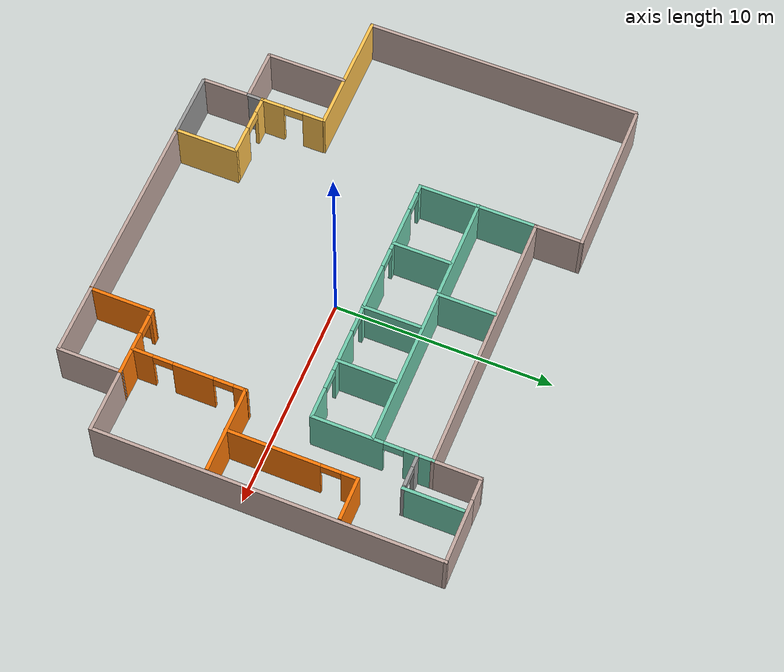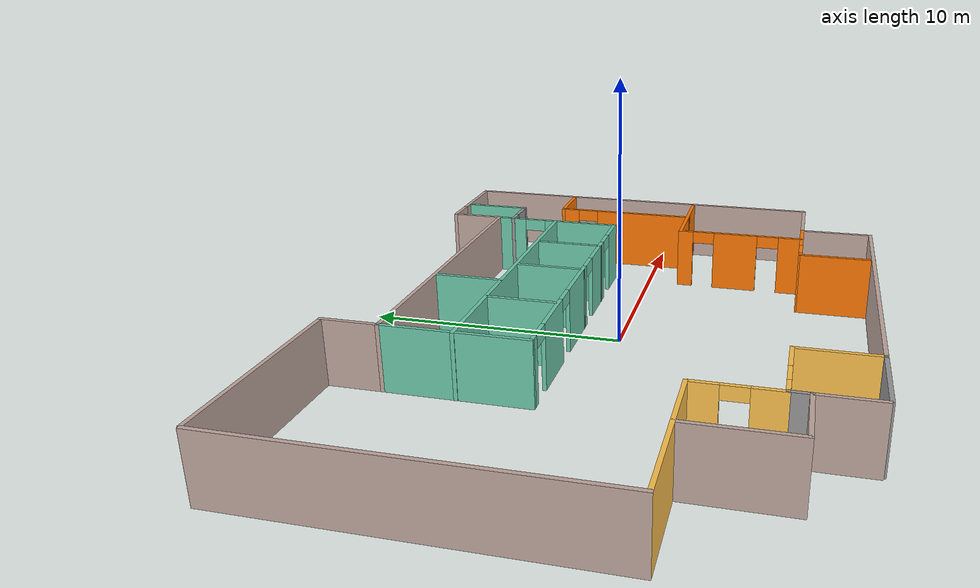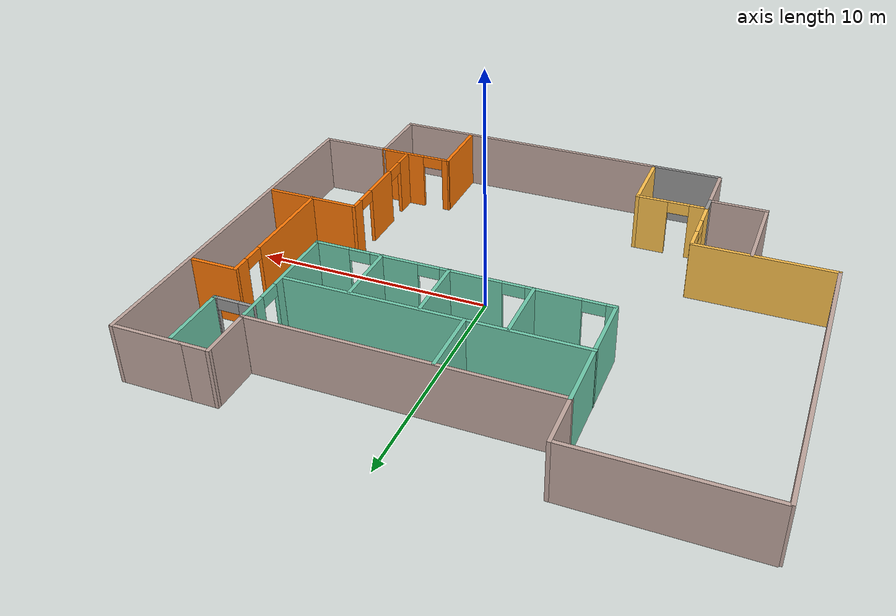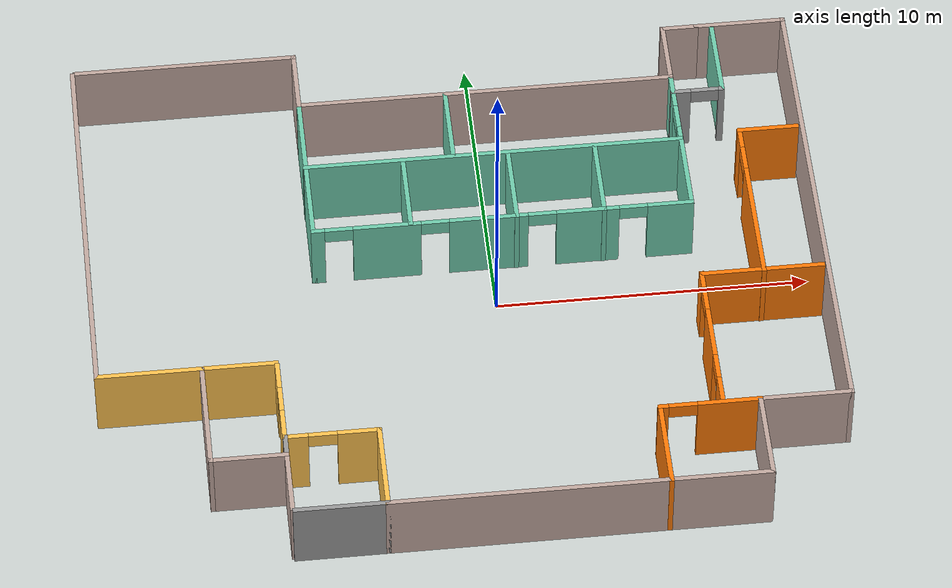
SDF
<?xml version='1.0'?>
<sdf version='1.6'>
  <model name='BuildingModel'>
    <pose frame=''>-1.26019 -0.137703 0 0 -0 0</pose>
    <link name='Wall_100'>
      <collision name='Wall_100_Collision'>
        <geometry>
          <box>
            <size>2.75 0.15 2.5</size>
          </box>
        </geometry>
        <pose frame=''>0 0 1.25 0 -0 0</pose>
      </collision>
      <visual name='Wall_100_Visual'>
        <pose frame=''>0 0 1.25 0 -0 0</pose>
        <geometry>
          <box>
            <size>2.75 0.15 2.5</size>
          </box>
        </geometry>
        <material>
          <script>
            <uri>file://media/materials/scripts/gazebo.material</uri>
            <name>Gazebo/Grey</name>
          </script>
          <ambient>0.435294 0.796078 0.67451 1</ambient>
        </material>
        <meta>
          <layer>0</layer>
        </meta>
      </visual>
      <pose frame=''>0.320563 5.77326 0 0 0 -1.5708</pose>
    </link>
    <link name='Wall_102'>
      <collision name='Wall_102_Collision'>
        <geometry>
          <box>
            <size>2.75 0.15 2.5</size>
          </box>
        </geometry>
        <pose frame=''>0 0 1.25 0 -0 0</pose>
      </collision>
      <visual name='Wall_102_Visual'>
        <pose frame=''>0 0 1.25 0 -0 0</pose>
        <geometry>
          <box>
            <size>2.75 0.15 2.5</size>
          </box>
        </geometry>
        <material>
          <script>
            <uri>file://media/materials/scripts/gazebo.material</uri>
            <name>Gazebo/Grey</name>
          </script>
          <ambient>0.435294 0.796078 0.67451 1</ambient>
        </material>
        <meta>
          <layer>0</layer>
        </meta>
      </visual>
      <pose frame=''>-1.30993 3.0968 0 0 0 -1.5708</pose>
    </link>
    <link name='Wall_104'>
      <collision name='Wall_104_Collision'>
        <geometry>
          <box>
            <size>2.75 0.15 2.5</size>
          </box>
        </geometry>
        <pose frame=''>0 0 1.25 0 -0 0</pose>
      </collision>
      <visual name='Wall_104_Visual'>
        <pose frame=''>0 0 1.25 0 -0 0</pose>
        <geometry>
          <box>
            <size>2.75 0.15 2.5</size>
          </box>
        </geometry>
        <material>
          <script>
            <uri>file://media/materials/scripts/gazebo.material</uri>
            <name>Gazebo/Grey</name>
          </script>
          <ambient>0.435294 0.796078 0.67451 1</ambient>
        </material>
        <meta>
          <layer>0</layer>
        </meta>
      </visual>
      <pose frame=''>2.07411 3.06603 0 0 0 -1.5708</pose>
    </link>
    <link name='Wall_106'>
      <collision name='Wall_106_Collision'>
        <geometry>
          <box>
            <size>2.75 0.15 2.5</size>
          </box>
        </geometry>
        <pose frame=''>0 0 1.25 0 -0 0</pose>
      </collision>
      <visual name='Wall_106_Visual'>
        <pose frame=''>0 0 1.25 0 -0 0</pose>
        <geometry>
          <box>
            <size>2.75 0.15 2.5</size>
          </box>
        </geometry>
        <material>
          <script>
            <uri>file://media/materials/scripts/gazebo.material</uri>
            <name>Gazebo/Grey</name>
          </script>
          <ambient>0.435294 0.796078 0.67451 1</ambient>
        </material>
        <meta>
          <layer>0</layer>
        </meta>
      </visual>
      <pose frame=''>4.87363 3.06603 0 0 0 -1.5708</pose>
    </link>
    <link name='Wall_108'>
      <pose frame=''>8.47315 6.45798 0 0 -0 0</pose>
      <visual name='Wall_108_Visual_0'>
        <pose frame=''>-0.551039 0 1.25 0 -0 0</pose>
        <geometry>
          <box>
            <size>0.647922 0.15 2.5</size>
          </box>
        </geometry>
        <material>
          <script>
            <uri>file://media/materials/scripts/gazebo.material</uri>
            <name>Gazebo/Grey</name>
          </script>
          <ambient>1 1 1 1</ambient>
        </material>
        <meta>
          <layer>0</layer>
        </meta>
      </visual>
      <collision name='Wall_108_Collision_0'>
        <geometry>
          <box>
            <size>0.647922 0.15 2.5</size>
          </box>
        </geometry>
        <pose frame=''>-0.551039 0 1.25 0 -0 0</pose>
      </collision>
      <visual name='Wall_108_Visual_1'>
        <pose frame=''>0.773961 0 1.25 0 -0 0</pose>
        <geometry>
          <box>
            <size>0.202078 0.15 2.5</size>
          </box>
        </geometry>
        <material>
          <script>
            <uri>file://media/materials/scripts/gazebo.material</uri>
            <name>Gazebo/Grey</name>
          </script>
          <ambient>1 1 1 1</ambient>
        </material>
        <meta>
          <layer>0</layer>
        </meta>
      </visual>
      <collision name='Wall_108_Collision_1'>
        <geometry>
          <box>
            <size>0.202078 0.15 2.5</size>
          </box>
        </geometry>
        <pose frame=''>0.773961 0 1.25 0 -0 0</pose>
      </collision>
      <visual name='Wall_108_Visual_2'>
        <pose frame=''>0.222922 0 2.25 0 -0 0</pose>
        <geometry>
          <box>
            <size>0.9 0.15 0.5</size>
          </box>
        </geometry>
        <material>
          <script>
            <uri>file://media/materials/scripts/gazebo.material</uri>
            <name>Gazebo/Grey</name>
          </script>
          <ambient>1 1 1 1</ambient>
        </material>
        <meta>
          <layer>0</layer>
        </meta>
      </visual>
      <collision name='Wall_108_Collision_2'>
        <geometry>
          <box>
            <size>0.9 0.15 0.5</size>
          </box>
        </geometry>
        <pose frame=''>0.222922 0 2.25 0 -0 0</pose>
      </collision>
    </link>
    <link name='Wall_112'>
      <collision name='Wall_112_Collision'>
        <geometry>
          <box>
            <size>2.75 0.15 2.5</size>
          </box>
        </geometry>
        <pose frame=''>0 0 1.25 0 -0 0</pose>
      </collision>
      <visual name='Wall_112_Visual'>
        <pose frame=''>0 0 1.25 0 -0 0</pose>
        <geometry>
          <box>
            <size>2.75 0.15 2.5</size>
          </box>
        </geometry>
        <material>
          <script>
            <uri>file://media/materials/scripts/gazebo.material</uri>
            <name>Gazebo/Grey</name>
          </script>
          <ambient>0.435294 0.796078 0.67451 1</ambient>
        </material>
        <meta>
          <layer>0</layer>
        </meta>
      </visual>
      <pose frame=''>9.27314 7.75798 0 0 -0 1.5708</pose>
    </link>
    <link name='Wall_114'>
      <collision name='Wall_114_Collision'>
        <geometry>
          <box>
            <size>3.75 0.15 2.5</size>
          </box>
        </geometry>
        <pose frame=''>0 0 1.25 0 -0 0</pose>
      </collision>
      <visual name='Wall_114_Visual'>
        <pose frame=''>0 0 1.25 0 -0 0</pose>
        <geometry>
          <box>
            <size>3.75 0.15 2.5</size>
          </box>
        </geometry>
        <material>
          <script>
            <uri>file://media/materials/scripts/gazebo.material</uri>
            <name>Gazebo/Grey</name>
          </script>
          <ambient>0.760784 0.662745 0.627451 1</ambient>
        </material>
        <meta>
          <layer>0</layer>
        </meta>
      </visual>
      <pose frame=''>-8.34334 -5.2515 0 0 0 -1.5708</pose>
    </link>
    <link name='Wall_115'>
      <collision name='Wall_115_Collision'>
        <geometry>
          <box>
            <size>2.5 0.15 2.5</size>
          </box>
        </geometry>
        <pose frame=''>0 0 1.25 0 -0 0</pose>
      </collision>
      <visual name='Wall_115_Visual'>
        <pose frame=''>0 0 1.25 0 -0 0</pose>
        <geometry>
          <box>
            <size>2.5 0.15 2.5</size>
          </box>
        </geometry>
        <material>
          <script>
            <uri>file://media/materials/scripts/gazebo.material</uri>
            <name>Gazebo/Grey</name>
          </script>
          <ambient>0.760784 0.662745 0.627451 1</ambient>
        </material>
        <meta>
          <layer>0</layer>
        </meta>
      </visual>
      <pose frame=''>-7.16834 -7.0515 0 0 -0 0</pose>
    </link>
    <link name='Wall_116'>
      <collision name='Wall_116_Collision'>
        <geometry>
          <box>
            <size>2.25 0.15 2.5</size>
          </box>
        </geometry>
        <pose frame=''>0 0 1.25 0 -0 0</pose>
      </collision>
      <visual name='Wall_116_Visual'>
        <pose frame=''>0 0 1.25 0 -0 0</pose>
        <geometry>
          <box>
            <size>2.25 0.15 2.5</size>
          </box>
        </geometry>
        <material>
          <script>
            <uri>file://media/materials/scripts/gazebo.material</uri>
            <name>Gazebo/Grey</name>
          </script>
          <ambient>0.760784 0.662745 0.627451 1</ambient>
        </material>
        <meta>
          <layer>0</layer>
        </meta>
      </visual>
      <pose frame=''>-5.99334 -8.1015 0 0 0 -1.5708</pose>
    </link>
    <link name='Wall_119'>
      <collision name='Wall_119_Collision'>
        <geometry>
          <box>
            <size>3 0.15 2.5</size>
          </box>
        </geometry>
        <pose frame=''>0 0 1.25 0 -0 0</pose>
      </collision>
      <visual name='Wall_119_Visual'>
        <pose frame=''>0 0 1.25 0 -0 0</pose>
        <geometry>
          <box>
            <size>3 0.15 2.5</size>
          </box>
        </geometry>
        <material>
          <script>
            <uri>file://media/materials/scripts/gazebo.material</uri>
            <name>Gazebo/Grey</name>
          </script>
          <ambient>1 1 1 1</ambient>
        </material>
        <meta>
          <layer>0</layer>
        </meta>
      </visual>
      <pose frame=''>-4.5 -9.22209 0 0 -0 3.14159</pose>
    </link>
    <link name='Wall_123'>
      <collision name='Wall_123_Collision'>
        <geometry>
          <box>
            <size>0.82944 0.15 2.5</size>
          </box>
        </geometry>
        <pose frame=''>0 0 1.25 0 -0 0</pose>
      </collision>
      <visual name='Wall_123_Visual'>
        <pose frame=''>0 0 1.25 0 -0 0</pose>
        <geometry>
          <box>
            <size>0.82944 0.15 2.5</size>
          </box>
        </geometry>
        <material>
          <script>
            <uri>file://media/materials/scripts/gazebo.material</uri>
            <name>Gazebo/Grey</name>
          </script>
          <ambient>1 1 1 1</ambient>
        </material>
        <meta>
          <layer>0</layer>
        </meta>
      </visual>
      <pose frame=''>-5.98976 -6.7118 0 0 0 -1.58133</pose>
    </link>
    <link name='Wall_125'>
      <collision name='Wall_125_Collision'>
        <geometry>
          <box>
            <size>3 0.15 2.5</size>
          </box>
        </geometry>
        <pose frame=''>0 0 1.25 0 -0 0</pose>
      </collision>
      <visual name='Wall_125_Visual'>
        <pose frame=''>0 0 1.25 0 -0 0</pose>
        <geometry>
          <box>
            <size>3 0.15 2.5</size>
          </box>
        </geometry>
        <material>
          <script>
            <uri>file://media/materials/scripts/gazebo.material</uri>
            <name>Gazebo/Grey</name>
          </script>
          <ambient>0.996078 0.47451 0.0196078 1</ambient>
        </material>
        <meta>
          <layer>0</layer>
        </meta>
      </visual>
      <pose frame=''>5.64293 -7.8029 0 0 -0 1.5708</pose>
    </link>
    <link name='Wall_126'>
      <pose frame=''>7.20897 -6.375 0 0 -0 0.001855</pose>
      <visual name='Wall_126_Visual_0'>
        <pose frame=''>-1.47213 0 1.25 0 -0 0</pose>
        <geometry>
          <box>
            <size>0.337805 0.15 2.5</size>
          </box>
        </geometry>
        <material>
          <script>
            <uri>file://media/materials/scripts/gazebo.material</uri>
            <name>Gazebo/Grey</name>
          </script>
          <ambient>0.996078 0.47451 0.0196078 1</ambient>
        </material>
        <meta>
          <layer>0</layer>
        </meta>
      </visual>
      <collision name='Wall_126_Collision_0'>
        <geometry>
          <box>
            <size>0.337805 0.15 2.5</size>
          </box>
        </geometry>
        <pose frame=''>-1.47213 0 1.25 0 -0 0</pose>
      </collision>
      <visual name='Wall_126_Visual_1'>
        <pose frame=''>0.618902 0 1.25 0 -0 0</pose>
        <geometry>
          <box>
            <size>2.04427 0.15 2.5</size>
          </box>
        </geometry>
        <material>
          <script>
            <uri>file://media/materials/scripts/gazebo.material</uri>
            <name>Gazebo/Grey</name>
          </script>
          <ambient>0.996078 0.47451 0.0196078 1</ambient>
        </material>
        <meta>
          <layer>0</layer>
        </meta>
      </visual>
      <collision name='Wall_126_Collision_1'>
        <geometry>
          <box>
            <size>2.04427 0.15 2.5</size>
          </box>
        </geometry>
        <pose frame=''>0.618902 0 1.25 0 -0 0</pose>
      </collision>
      <visual name='Wall_126_Visual_2'>
        <pose frame=''>-0.853231 0 2.25 0 -0 0</pose>
        <geometry>
          <box>
            <size>0.9 0.15 0.5</size>
          </box>
        </geometry>
        <material>
          <script>
            <uri>file://media/materials/scripts/gazebo.material</uri>
            <name>Gazebo/Grey</name>
          </script>
          <ambient>0.996078 0.47451 0.0196078 1</ambient>
        </material>
        <meta>
          <layer>0</layer>
        </meta>
      </visual>
      <collision name='Wall_126_Collision_2'>
        <geometry>
          <box>
            <size>0.9 0.15 0.5</size>
          </box>
        </geometry>
        <pose frame=''>-0.853231 0 2.25 0 -0 0</pose>
      </collision>
    </link>
    <link name='Wall_128'>
      <pose frame=''>7.60783 -3.76833 0 0 -0 1.5708</pose>
      <visual name='Wall_128_Visual_0'>
        <pose frame=''>-2.14466 0 1.25 0 -0 0</pose>
        <geometry>
          <box>
            <size>1.00114 0.15 2.5</size>
          </box>
        </geometry>
        <material>
          <script>
            <uri>file://media/materials/scripts/gazebo.material</uri>
            <name>Gazebo/Grey</name>
          </script>
          <ambient>0.996078 0.47451 0.0196078 1</ambient>
        </material>
        <meta>
          <layer>0</layer>
        </meta>
      </visual>
      <collision name='Wall_128_Collision_0'>
        <geometry>
          <box>
            <size>1.00114 0.15 2.5</size>
          </box>
        </geometry>
        <pose frame=''>-2.14466 0 1.25 0 -0 0</pose>
      </collision>
      <visual name='Wall_128_Visual_1'>
        <pose frame=''>0.181381 0 1.25 0 -0 0</pose>
        <geometry>
          <box>
            <size>1.85095 0.15 2.5</size>
          </box>
        </geometry>
        <material>
          <script>
            <uri>file://media/materials/scripts/gazebo.material</uri>
            <name>Gazebo/Grey</name>
          </script>
          <ambient>0.996078 0.47451 0.0196078 1</ambient>
        </material>
        <meta>
          <layer>0</layer>
        </meta>
      </visual>
      <collision name='Wall_128_Collision_1'>
        <geometry>
          <box>
            <size>1.85095 0.15 2.5</size>
          </box>
        </geometry>
        <pose frame=''>0.181381 0 1.25 0 -0 0</pose>
      </collision>
      <visual name='Wall_128_Visual_2'>
        <pose frame=''>2.32604 0 1.25 0 -0 0</pose>
        <geometry>
          <box>
            <size>0.638372 0.15 2.5</size>
          </box>
        </geometry>
        <material>
          <script>
            <uri>file://media/materials/scripts/gazebo.material</uri>
            <name>Gazebo/Grey</name>
          </script>
          <ambient>0.996078 0.47451 0.0196078 1</ambient>
        </material>
        <meta>
          <layer>0</layer>
        </meta>
      </visual>
      <collision name='Wall_128_Collision_2'>
        <geometry>
          <box>
            <size>0.638372 0.15 2.5</size>
          </box>
        </geometry>
        <pose frame=''>2.32604 0 1.25 0 -0 0</pose>
      </collision>
      <visual name='Wall_128_Visual_3'>
        <pose frame=''>-1.19409 0 2.25 0 -0 0</pose>
        <geometry>
          <box>
            <size>0.9 0.15 0.5</size>
          </box>
        </geometry>
        <material>
          <script>
            <uri>file://media/materials/scripts/gazebo.material</uri>
            <name>Gazebo/Grey</name>
          </script>
          <ambient>0.996078 0.47451 0.0196078 1</ambient>
        </material>
        <meta>
          <layer>0</layer>
        </meta>
      </visual>
      <collision name='Wall_128_Collision_3'>
        <geometry>
          <box>
            <size>0.9 0.15 0.5</size>
          </box>
        </geometry>
        <pose frame=''>-1.19409 0 2.25 0 -0 0</pose>
      </collision>
      <visual name='Wall_128_Visual_4'>
        <pose frame=''>1.55686 0 2.25 0 -0 0</pose>
        <geometry>
          <box>
            <size>0.9 0.15 0.5</size>
          </box>
        </geometry>
        <material>
          <script>
            <uri>file://media/materials/scripts/gazebo.material</uri>
            <name>Gazebo/Grey</name>
          </script>
          <ambient>0.996078 0.47451 0.0196078 1</ambient>
        </material>
        <meta>
          <layer>0</layer>
        </meta>
      </visual>
      <collision name='Wall_128_Collision_4'>
        <geometry>
          <box>
            <size>0.9 0.15 0.5</size>
          </box>
        </geometry>
        <pose frame=''>1.55686 0 2.25 0 -0 0</pose>
      </collision>
    </link>
    <link name='Wall_129'>
      <collision name='Wall_129_Collision'>
        <geometry>
          <box>
            <size>4 0.15 2.5</size>
          </box>
        </geometry>
        <pose frame=''>0 0 1.25 0 -0 0</pose>
      </collision>
      <visual name='Wall_129_Visual'>
        <pose frame=''>0 0 1.25 0 -0 0</pose>
        <geometry>
          <box>
            <size>4 0.15 2.5</size>
          </box>
        </geometry>
        <material>
          <script>
            <uri>file://media/materials/scripts/gazebo.material</uri>
            <name>Gazebo/Grey</name>
          </script>
          <ambient>0.996078 0.47451 0.0196078 1</ambient>
        </material>
        <meta>
          <layer>0</layer>
        </meta>
      </visual>
      <pose frame=''>9.53283 -1.21833 0 0 -0 0</pose>
    </link>
    <link name='Wall_132'>
      <pose frame=''>9.58814 1.68713 0 0 -0 1.5708</pose>
      <visual name='Wall_132_Visual_0'>
        <pose frame=''>-0.852047 0 1.25 0 -0 0</pose>
        <geometry>
          <box>
            <size>4.29591 0.15 2.5</size>
          </box>
        </geometry>
        <material>
          <script>
            <uri>file://media/materials/scripts/gazebo.material</uri>
            <name>Gazebo/Grey</name>
          </script>
          <ambient>0.996078 0.47451 0.0196078 1</ambient>
        </material>
        <meta>
          <layer>0</layer>
        </meta>
      </visual>
      <collision name='Wall_132_Collision_0'>
        <geometry>
          <box>
            <size>4.29591 0.15 2.5</size>
          </box>
        </geometry>
        <pose frame=''>-0.852047 0 1.25 0 -0 0</pose>
      </collision>
      <visual name='Wall_132_Visual_1'>
        <pose frame=''>2.59795 0 1.25 0 -0 0</pose>
        <geometry>
          <box>
            <size>0.804095 0.15 2.5</size>
          </box>
        </geometry>
        <material>
          <script>
            <uri>file://media/materials/scripts/gazebo.material</uri>
            <name>Gazebo/Grey</name>
          </script>
          <ambient>0.996078 0.47451 0.0196078 1</ambient>
        </material>
        <meta>
          <layer>0</layer>
        </meta>
      </visual>
      <collision name='Wall_132_Collision_1'>
        <geometry>
          <box>
            <size>0.804095 0.15 2.5</size>
          </box>
        </geometry>
        <pose frame=''>2.59795 0 1.25 0 -0 0</pose>
      </collision>
      <visual name='Wall_132_Visual_2'>
        <pose frame=''>1.74591 0 2.25 0 -0 0</pose>
        <geometry>
          <box>
            <size>0.9 0.15 0.5</size>
          </box>
        </geometry>
        <material>
          <script>
            <uri>file://media/materials/scripts/gazebo.material</uri>
            <name>Gazebo/Grey</name>
          </script>
          <ambient>0.996078 0.47451 0.0196078 1</ambient>
        </material>
        <meta>
          <layer>0</layer>
        </meta>
      </visual>
      <collision name='Wall_132_Collision_2'>
        <geometry>
          <box>
            <size>0.9 0.15 0.5</size>
          </box>
        </geometry>
        <pose frame=''>1.74591 0 2.25 0 -0 0</pose>
      </collision>
    </link>
    <link name='Wall_133'>
      <collision name='Wall_133_Collision'>
        <geometry>
          <box>
            <size>2 0.15 2.5</size>
          </box>
        </geometry>
        <pose frame=''>0 0 1.25 0 -0 0</pose>
      </collision>
      <visual name='Wall_133_Visual'>
        <pose frame=''>0 0 1.25 0 -0 0</pose>
        <geometry>
          <box>
            <size>2 0.15 2.5</size>
          </box>
        </geometry>
        <material>
          <script>
            <uri>file://media/materials/scripts/gazebo.material</uri>
            <name>Gazebo/Grey</name>
          </script>
          <ambient>0.996078 0.47451 0.0196078 1</ambient>
        </material>
        <meta>
          <layer>0</layer>
        </meta>
      </visual>
      <pose frame=''>10.5131 4.61213 0 0 -0 0</pose>
    </link>
    <link name='Wall_61'>
      <collision name='Wall_61_Collision'>
        <geometry>
          <box>
            <size>12.75 0.15 2.5</size>
          </box>
        </geometry>
        <pose frame=''>0 0 1.25 0 -0 0</pose>
      </collision>
      <visual name='Wall_61_Visual'>
        <pose frame=''>0 0 1.25 0 -0 0</pose>
        <geometry>
          <box>
            <size>12.75 0.15 2.5</size>
          </box>
        </geometry>
        <material>
          <script>
            <uri>file://media/materials/scripts/gazebo.material</uri>
            <name>Gazebo/Grey</name>
          </script>
          <ambient>0.760784 0.662745 0.627451 1</ambient>
        </material>
        <meta>
          <layer>0</layer>
        </meta>
      </visual>
      <pose frame=''>-11.625 2.87791 0 0 0 -1.5708</pose>
    </link>
    <link name='Wall_68'>
      <pose frame=''>-6.00148 -4.9471 0 0 0 -1.5708</pose>
      <visual name='Wall_68_Visual_0'>
        <pose frame=''>-1.01412 0 1.25 0 -0 0</pose>
        <geometry>
          <box>
            <size>0.971754 0.15 2.5</size>
          </box>
        </geometry>
        <material>
          <script>
            <uri>file://media/materials/scripts/gazebo.material</uri>
            <name>Gazebo/Grey</name>
          </script>
          <ambient>1 0.764706 0.305882 1</ambient>
        </material>
        <meta>
          <layer>0</layer>
        </meta>
      </visual>
      <collision name='Wall_68_Collision_0'>
        <geometry>
          <box>
            <size>0.971754 0.15 2.5</size>
          </box>
        </geometry>
        <pose frame=''>-1.01412 0 1.25 0 -0 0</pose>
      </collision>
      <visual name='Wall_68_Visual_1'>
        <pose frame=''>0.935877 0 1.25 0 -0 0</pose>
        <geometry>
          <box>
            <size>1.12825 0.15 2.5</size>
          </box>
        </geometry>
        <material>
          <script>
            <uri>file://media/materials/scripts/gazebo.material</uri>
            <name>Gazebo/Grey</name>
          </script>
          <ambient>1 0.764706 0.305882 1</ambient>
        </material>
        <meta>
          <layer>0</layer>
        </meta>
      </visual>
      <collision name='Wall_68_Collision_1'>
        <geometry>
          <box>
            <size>1.12825 0.15 2.5</size>
          </box>
        </geometry>
        <pose frame=''>0.935877 0 1.25 0 -0 0</pose>
      </collision>
      <visual name='Wall_68_Visual_2'>
        <pose frame=''>-0.078246 0 2.25 0 -0 0</pose>
        <geometry>
          <box>
            <size>0.9 0.15 0.5</size>
          </box>
        </geometry>
        <material>
          <script>
            <uri>file://media/materials/scripts/gazebo.material</uri>
            <name>Gazebo/Grey</name>
          </script>
          <ambient>1 0.764706 0.305882 1</ambient>
        </material>
        <meta>
          <layer>0</layer>
        </meta>
      </visual>
      <collision name='Wall_68_Collision_2'>
        <geometry>
          <box>
            <size>0.9 0.15 0.5</size>
          </box>
        </geometry>
        <pose frame=''>-0.078246 0 2.25 0 -0 0</pose>
      </collision>
    </link>
    <link name='Wall_69'>
      <pose frame=''>-4.53059 -6.3721 0 0 -0 0</pose>
      <visual name='Wall_69_Visual_0'>
        <pose frame=''>-1.13832 0 1.25 0 -0 0</pose>
        <geometry>
          <box>
            <size>0.78454 0.15 2.5</size>
          </box>
        </geometry>
        <material>
          <script>
            <uri>file://media/materials/scripts/gazebo.material</uri>
            <name>Gazebo/Grey</name>
          </script>
          <ambient>1 0.764706 0.305882 1</ambient>
        </material>
        <meta>
          <layer>0</layer>
        </meta>
      </visual>
      <collision name='Wall_69_Collision_0'>
        <geometry>
          <box>
            <size>0.78454 0.15 2.5</size>
          </box>
        </geometry>
        <pose frame=''>-1.13832 0 1.25 0 -0 0</pose>
      </collision>
      <visual name='Wall_69_Visual_1'>
        <pose frame=''>0.84227 0 1.25 0 -0 0</pose>
        <geometry>
          <box>
            <size>1.37664 0.15 2.5</size>
          </box>
        </geometry>
        <material>
          <script>
            <uri>file://media/materials/scripts/gazebo.material</uri>
            <name>Gazebo/Grey</name>
          </script>
          <ambient>1 0.764706 0.305882 1</ambient>
        </material>
        <meta>
          <layer>0</layer>
        </meta>
      </visual>
      <collision name='Wall_69_Collision_1'>
        <geometry>
          <box>
            <size>1.37664 0.15 2.5</size>
          </box>
        </geometry>
        <pose frame=''>0.84227 0 1.25 0 -0 0</pose>
      </collision>
      <visual name='Wall_69_Visual_2'>
        <pose frame=''>-0.29605 0 2.25 0 -0 0</pose>
        <geometry>
          <box>
            <size>0.9 0.15 0.5</size>
          </box>
        </geometry>
        <material>
          <script>
            <uri>file://media/materials/scripts/gazebo.material</uri>
            <name>Gazebo/Grey</name>
          </script>
          <ambient>1 0.764706 0.305882 1</ambient>
        </material>
        <meta>
          <layer>0</layer>
        </meta>
      </visual>
      <collision name='Wall_69_Collision_2'>
        <geometry>
          <box>
            <size>0.9 0.15 0.5</size>
          </box>
        </geometry>
        <pose frame=''>-0.29605 0 2.25 0 -0 0</pose>
      </collision>
    </link>
    <link name='Wall_71'>
      <collision name='Wall_71_Collision'>
        <geometry>
          <box>
            <size>3 0.15 2.5</size>
          </box>
        </geometry>
        <pose frame=''>0 0 1.25 0 -0 0</pose>
      </collision>
      <visual name='Wall_71_Visual'>
        <pose frame=''>0 0 1.25 0 -0 0</pose>
        <geometry>
          <box>
            <size>3 0.15 2.5</size>
          </box>
        </geometry>
        <material>
          <script>
            <uri>file://media/materials/scripts/gazebo.material</uri>
            <name>Gazebo/Grey</name>
          </script>
          <ambient>1 0.764706 0.305882 1</ambient>
        </material>
        <meta>
          <layer>0</layer>
        </meta>
      </visual>
      <pose frame=''>-3.075 -7.79709 0 0 0 -1.5708</pose>
    </link>
    <link name='Wall_72'>
      <collision name='Wall_72_Collision'>
        <geometry>
          <box>
            <size>12 0.15 2.5</size>
          </box>
        </geometry>
        <pose frame=''>0 0 1.25 0 -0 0</pose>
      </collision>
      <visual name='Wall_72_Visual'>
        <pose frame=''>0 0 1.25 0 -0 0</pose>
        <geometry>
          <box>
            <size>12 0.15 2.5</size>
          </box>
        </geometry>
        <material>
          <script>
            <uri>file://media/materials/scripts/gazebo.material</uri>
            <name>Gazebo/Grey</name>
          </script>
          <ambient>0.760784 0.662745 0.627451 1</ambient>
        </material>
        <meta>
          <layer>0</layer>
        </meta>
      </visual>
      <pose frame=''>2.85 -9.22209 0 0 -0 0</pose>
    </link>
    <link name='Wall_73'>
      <collision name='Wall_73_Collision'>
        <geometry>
          <box>
            <size>3 0.15 2.5</size>
          </box>
        </geometry>
        <pose frame=''>0 0 1.25 0 -0 0</pose>
      </collision>
      <visual name='Wall_73_Visual'>
        <pose frame=''>0 0 1.25 0 -0 0</pose>
        <geometry>
          <box>
            <size>3 0.15 2.5</size>
          </box>
        </geometry>
        <material>
          <script>
            <uri>file://media/materials/scripts/gazebo.material</uri>
            <name>Gazebo/Grey</name>
          </script>
          <ambient>0.760784 0.662745 0.627451 1</ambient>
        </material>
        <meta>
          <layer>0</layer>
        </meta>
      </visual>
      <pose frame=''>8.775 -7.79709 0 0 -0 1.5708</pose>
    </link>
    <link name='Wall_74'>
      <collision name='Wall_74_Collision'>
        <geometry>
          <box>
            <size>3 0.15 2.5</size>
          </box>
        </geometry>
        <pose frame=''>0 0 1.25 0 -0 0</pose>
      </collision>
      <visual name='Wall_74_Visual'>
        <pose frame=''>0 0 1.25 0 -0 0</pose>
        <geometry>
          <box>
            <size>3 0.15 2.5</size>
          </box>
        </geometry>
        <material>
          <script>
            <uri>file://media/materials/scripts/gazebo.material</uri>
            <name>Gazebo/Grey</name>
          </script>
          <ambient>0.760784 0.662745 0.627451 1</ambient>
        </material>
        <meta>
          <layer>0</layer>
        </meta>
      </visual>
      <pose frame=''>10.2 -6.3721 0 0 -0 0</pose>
    </link>
    <link name='Wall_75'>
      <collision name='Wall_75_Collision'>
        <geometry>
          <box>
            <size>15.75 0.15 2.5</size>
          </box>
        </geometry>
        <pose frame=''>0 0 1.25 0 -0 0</pose>
      </collision>
      <visual name='Wall_75_Visual'>
        <pose frame=''>0 0 1.25 0 -0 0</pose>
        <geometry>
          <box>
            <size>15.75 0.15 2.5</size>
          </box>
        </geometry>
        <material>
          <script>
            <uri>file://media/materials/scripts/gazebo.material</uri>
            <name>Gazebo/Grey</name>
          </script>
          <ambient>0.760784 0.662745 0.627451 1</ambient>
        </material>
        <meta>
          <layer>0</layer>
        </meta>
      </visual>
      <pose frame=''>11.625 1.4279 0 0 -0 1.5708</pose>
    </link>
    <link name='Wall_76'>
      <collision name='Wall_76_Collision'>
        <geometry>
          <box>
            <size>3 0.15 2.5</size>
          </box>
        </geometry>
        <pose frame=''>0 0 1.25 0 -0 0</pose>
      </collision>
      <visual name='Wall_76_Visual'>
        <pose frame=''>0 0 1.25 0 -0 0</pose>
        <geometry>
          <box>
            <size>3 0.15 2.5</size>
          </box>
        </geometry>
        <material>
          <script>
            <uri>file://media/materials/scripts/gazebo.material</uri>
            <name>Gazebo/Grey</name>
          </script>
          <ambient>0.760784 0.662745 0.627451 1</ambient>
        </material>
        <meta>
          <layer>0</layer>
        </meta>
      </visual>
      <pose frame=''>10.2 9.2279 0 0 -0 3.14159</pose>
    </link>
    <link name='Wall_77'>
      <collision name='Wall_77_Collision'>
        <geometry>
          <box>
            <size>1.25 0.15 2.5</size>
          </box>
        </geometry>
        <pose frame=''>0 0 1.25 0 -0 0</pose>
      </collision>
      <visual name='Wall_77_Visual'>
        <pose frame=''>0 0 1.25 0 -0 0</pose>
        <geometry>
          <box>
            <size>1.25 0.15 2.5</size>
          </box>
        </geometry>
        <material>
          <script>
            <uri>file://media/materials/scripts/gazebo.material</uri>
            <name>Gazebo/Grey</name>
          </script>
          <ambient>0.760784 0.662745 0.627451 1</ambient>
        </material>
        <meta>
          <layer>0</layer>
        </meta>
      </visual>
      <pose frame=''>8.225 9.2279 0 0 -0 3.14159</pose>
    </link>
    <link name='Wall_78'>
      <collision name='Wall_78_Collision'>
        <geometry>
          <box>
            <size>2.25 0.15 2.5</size>
          </box>
        </geometry>
        <pose frame=''>0 0 1.25 0 -0 0</pose>
      </collision>
      <visual name='Wall_78_Visual'>
        <pose frame=''>0 0 1.25 0 -0 0</pose>
        <geometry>
          <box>
            <size>2.25 0.15 2.5</size>
          </box>
        </geometry>
        <material>
          <script>
            <uri>file://media/materials/scripts/gazebo.material</uri>
            <name>Gazebo/Grey</name>
          </script>
          <ambient>0.760784 0.662745 0.627451 1</ambient>
        </material>
        <meta>
          <layer>0</layer>
        </meta>
      </visual>
      <pose frame=''>7.675 8.17791 0 0 0 -1.5708</pose>
    </link>
    <link name='Wall_79'>
      <collision name='Wall_79_Collision'>
        <geometry>
          <box>
            <size>12.25 0.15 2.5</size>
          </box>
        </geometry>
        <pose frame=''>0 0 1.25 0 -0 0</pose>
      </collision>
      <visual name='Wall_79_Visual'>
        <pose frame=''>0 0 1.25 0 -0 0</pose>
        <geometry>
          <box>
            <size>12.25 0.15 2.5</size>
          </box>
        </geometry>
        <material>
          <script>
            <uri>file://media/materials/scripts/gazebo.material</uri>
            <name>Gazebo/Grey</name>
          </script>
          <ambient>0.760784 0.662745 0.627451 1</ambient>
        </material>
        <meta>
          <layer>0</layer>
        </meta>
      </visual>
      <pose frame=''>1.625 7.1279 0 0 -0 3.14159</pose>
    </link>
    <link name='Wall_80'>
      <collision name='Wall_80_Collision'>
        <geometry>
          <box>
            <size>2.25 0.15 2.5</size>
          </box>
        </geometry>
        <pose frame=''>0 0 1.25 0 -0 0</pose>
      </collision>
      <visual name='Wall_80_Visual'>
        <pose frame=''>0 0 1.25 0 -0 0</pose>
        <geometry>
          <box>
            <size>2.25 0.15 2.5</size>
          </box>
        </geometry>
        <material>
          <script>
            <uri>file://media/materials/scripts/gazebo.material</uri>
            <name>Gazebo/Grey</name>
          </script>
          <ambient>0.760784 0.662745 0.627451 1</ambient>
        </material>
        <meta>
          <layer>0</layer>
        </meta>
      </visual>
      <pose frame=''>-4.425 8.17791 0 0 -0 1.5708</pose>
    </link>
    <link name='Wall_81'>
      <collision name='Wall_81_Collision'>
        <geometry>
          <box>
            <size>7.25 0.15 2.5</size>
          </box>
        </geometry>
        <pose frame=''>0 0 1.25 0 -0 0</pose>
      </collision>
      <visual name='Wall_81_Visual'>
        <pose frame=''>0 0 1.25 0 -0 0</pose>
        <geometry>
          <box>
            <size>7.25 0.15 2.5</size>
          </box>
        </geometry>
        <material>
          <script>
            <uri>file://media/materials/scripts/gazebo.material</uri>
            <name>Gazebo/Grey</name>
          </script>
          <ambient>0.760784 0.662745 0.627451 1</ambient>
        </material>
        <meta>
          <layer>0</layer>
        </meta>
      </visual>
      <pose frame=''>-7.975 9.2279 0 0 -0 3.14159</pose>
    </link>
    <link name='Wall_88'>
      <collision name='Wall_88_Collision'>
        <geometry>
          <box>
            <size>5.75 0.15 2.5</size>
          </box>
        </geometry>
        <pose frame=''>0 0 1.25 0 -0 0</pose>
      </collision>
      <visual name='Wall_88_Visual'>
        <pose frame=''>0 0 1.25 0 -0 0</pose>
        <geometry>
          <box>
            <size>5.75 0.15 2.5</size>
          </box>
        </geometry>
        <material>
          <script>
            <uri>file://media/materials/scripts/gazebo.material</uri>
            <name>Gazebo/Grey</name>
          </script>
          <ambient>1 0.764706 0.305882 1</ambient>
        </material>
        <meta>
          <layer>0</layer>
        </meta>
      </visual>
      <pose frame=''>-8.825 -3.4221 0 0 -0 0</pose>
    </link>
    <link name='Wall_91'>
      <collision name='Wall_91_Collision'>
        <geometry>
          <box>
            <size>5.5 0.15 2.5</size>
          </box>
        </geometry>
        <pose frame=''>0 0 1.25 0 -0 0</pose>
      </collision>
      <visual name='Wall_91_Visual'>
        <pose frame=''>0 0 1.25 0 -0 0</pose>
        <geometry>
          <box>
            <size>5.5 0.15 2.5</size>
          </box>
        </geometry>
        <material>
          <script>
            <uri>file://media/materials/scripts/gazebo.material</uri>
            <name>Gazebo/Grey</name>
          </script>
          <ambient>0.435294 0.796078 0.67451 1</ambient>
        </material>
        <meta>
          <layer>0</layer>
        </meta>
      </visual>
      <pose frame=''>-4.425 4.45291 0 0 0 -1.5708</pose>
    </link>
    <link name='Wall_94'>
      <pose frame=''>1.625 1.77791 0 0 -0 0</pose>
      <visual name='Wall_94_Visual_0'>
        <pose frame=''>-5.90475 0 1.25 0 -0 0</pose>
        <geometry>
          <box>
            <size>0.440491 0.15 2.5</size>
          </box>
        </geometry>
        <material>
          <script>
            <uri>file://media/materials/scripts/gazebo.material</uri>
            <name>Gazebo/Grey</name>
          </script>
          <ambient>0.435294 0.796078 0.67451 1</ambient>
        </material>
        <meta>
          <layer>0</layer>
        </meta>
      </visual>
      <collision name='Wall_94_Collision_0'>
        <geometry>
          <box>
            <size>0.440491 0.15 2.5</size>
          </box>
        </geometry>
        <pose frame=''>-5.90475 0 1.25 0 -0 0</pose>
      </collision>
      <visual name='Wall_94_Visual_1'>
        <pose frame=''>-3.69631 0 1.25 0 -0 0</pose>
        <geometry>
          <box>
            <size>2.17639 0.15 2.5</size>
          </box>
        </geometry>
        <material>
          <script>
            <uri>file://media/materials/scripts/gazebo.material</uri>
            <name>Gazebo/Grey</name>
          </script>
          <ambient>0.435294 0.796078 0.67451 1</ambient>
        </material>
        <meta>
          <layer>0</layer>
        </meta>
      </visual>
      <collision name='Wall_94_Collision_1'>
        <geometry>
          <box>
            <size>2.17639 0.15 2.5</size>
          </box>
        </geometry>
        <pose frame=''>-3.69631 0 1.25 0 -0 0</pose>
      </collision>
      <visual name='Wall_94_Visual_2'>
        <pose frame=''>-0.446035 0 1.25 0 -0 0</pose>
        <geometry>
          <box>
            <size>2.52416 0.15 2.5</size>
          </box>
        </geometry>
        <material>
          <script>
            <uri>file://media/materials/scripts/gazebo.material</uri>
            <name>Gazebo/Grey</name>
          </script>
          <ambient>0.435294 0.796078 0.67451 1</ambient>
        </material>
        <meta>
          <layer>0</layer>
        </meta>
      </visual>
      <collision name='Wall_94_Collision_2'>
        <geometry>
          <box>
            <size>2.52416 0.15 2.5</size>
          </box>
        </geometry>
        <pose frame=''>-0.446035 0 1.25 0 -0 0</pose>
      </collision>
      <visual name='Wall_94_Visual_3'>
        <pose frame=''>2.72399 0 1.25 0 -0 0</pose>
        <geometry>
          <box>
            <size>2.01589 0.15 2.5</size>
          </box>
        </geometry>
        <material>
          <script>
            <uri>file://media/materials/scripts/gazebo.material</uri>
            <name>Gazebo/Grey</name>
          </script>
          <ambient>0.435294 0.796078 0.67451 1</ambient>
        </material>
        <meta>
          <layer>0</layer>
        </meta>
      </visual>
      <collision name='Wall_94_Collision_3'>
        <geometry>
          <box>
            <size>2.01589 0.15 2.5</size>
          </box>
        </geometry>
        <pose frame=''>2.72399 0 1.25 0 -0 0</pose>
      </collision>
      <visual name='Wall_94_Visual_4'>
        <pose frame=''>5.37847 0 1.25 0 -0 0</pose>
        <geometry>
          <box>
            <size>1.49307 0.15 2.5</size>
          </box>
        </geometry>
        <material>
          <script>
            <uri>file://media/materials/scripts/gazebo.material</uri>
            <name>Gazebo/Grey</name>
          </script>
          <ambient>0.435294 0.796078 0.67451 1</ambient>
        </material>
        <meta>
          <layer>0</layer>
        </meta>
      </visual>
      <collision name='Wall_94_Collision_4'>
        <geometry>
          <box>
            <size>1.49307 0.15 2.5</size>
          </box>
        </geometry>
        <pose frame=''>5.37847 0 1.25 0 -0 0</pose>
      </collision>
      <visual name='Wall_94_Visual_5'>
        <pose frame=''>-5.23451 0 2.25 0 -0 0</pose>
        <geometry>
          <box>
            <size>0.9 0.15 0.5</size>
          </box>
        </geometry>
        <material>
          <script>
            <uri>file://media/materials/scripts/gazebo.material</uri>
            <name>Gazebo/Grey</name>
          </script>
          <ambient>0.435294 0.796078 0.67451 1</ambient>
        </material>
        <meta>
          <layer>0</layer>
        </meta>
      </visual>
      <collision name='Wall_94_Collision_5'>
        <geometry>
          <box>
            <size>0.9 0.15 0.5</size>
          </box>
        </geometry>
        <pose frame=''>-5.23451 0 2.25 0 -0 0</pose>
      </collision>
      <visual name='Wall_94_Visual_6'>
        <pose frame=''>-2.15812 0 2.25 0 -0 0</pose>
        <geometry>
          <box>
            <size>0.9 0.15 0.5</size>
          </box>
        </geometry>
        <material>
          <script>
            <uri>file://media/materials/scripts/gazebo.material</uri>
            <name>Gazebo/Grey</name>
          </script>
          <ambient>0.435294 0.796078 0.67451 1</ambient>
        </material>
        <meta>
          <layer>0</layer>
        </meta>
      </visual>
      <collision name='Wall_94_Collision_6'>
        <geometry>
          <box>
            <size>0.9 0.15 0.5</size>
          </box>
        </geometry>
        <pose frame=''>-2.15812 0 2.25 0 -0 0</pose>
      </collision>
      <visual name='Wall_94_Visual_7'>
        <pose frame=''>1.26605 0 2.25 0 -0 0</pose>
        <geometry>
          <box>
            <size>0.9 0.15 0.5</size>
          </box>
        </geometry>
        <material>
          <script>
            <uri>file://media/materials/scripts/gazebo.material</uri>
            <name>Gazebo/Grey</name>
          </script>
          <ambient>0.435294 0.796078 0.67451 1</ambient>
        </material>
        <meta>
          <layer>0</layer>
        </meta>
      </visual>
      <collision name='Wall_94_Collision_7'>
        <geometry>
          <box>
            <size>0.9 0.15 0.5</size>
          </box>
        </geometry>
        <pose frame=''>1.26605 0 2.25 0 -0 0</pose>
      </collision>
      <visual name='Wall_94_Visual_8'>
        <pose frame=''>4.18193 0 2.25 0 -0 0</pose>
        <geometry>
          <box>
            <size>0.9 0.15 0.5</size>
          </box>
        </geometry>
        <material>
          <script>
            <uri>file://media/materials/scripts/gazebo.material</uri>
            <name>Gazebo/Grey</name>
          </script>
          <ambient>0.435294 0.796078 0.67451 1</ambient>
        </material>
        <meta>
          <layer>0</layer>
        </meta>
      </visual>
      <collision name='Wall_94_Collision_8'>
        <geometry>
          <box>
            <size>0.9 0.15 0.5</size>
          </box>
        </geometry>
        <pose frame=''>4.18193 0 2.25 0 -0 0</pose>
      </collision>
    </link>
    <link name='Wall_95'>
      <pose frame=''>7.675 4.45291 0 0 -0 1.5708</pose>
      <visual name='Wall_95_Visual_0'>
        <pose frame=''>-1.12014 0 1.25 0 -0 0</pose>
        <geometry>
          <box>
            <size>3.25972 0.15 2.5</size>
          </box>
        </geometry>
        <material>
          <script>
            <uri>file://media/materials/scripts/gazebo.material</uri>
            <name>Gazebo/Grey</name>
          </script>
          <ambient>0.435294 0.796078 0.67451 1</ambient>
        </material>
        <meta>
          <layer>0</layer>
        </meta>
      </visual>
      <collision name='Wall_95_Collision_0'>
        <geometry>
          <box>
            <size>3.25972 0.15 2.5</size>
          </box>
        </geometry>
        <pose frame=''>-1.12014 0 1.25 0 -0 0</pose>
      </collision>
      <visual name='Wall_95_Visual_1'>
        <pose frame=''>2.07986 0 1.25 0 -0 0</pose>
        <geometry>
          <box>
            <size>1.34028 0.15 2.5</size>
          </box>
        </geometry>
        <material>
          <script>
            <uri>file://media/materials/scripts/gazebo.material</uri>
            <name>Gazebo/Grey</name>
          </script>
          <ambient>0.435294 0.796078 0.67451 1</ambient>
        </material>
        <meta>
          <layer>0</layer>
        </meta>
      </visual>
      <collision name='Wall_95_Collision_1'>
        <geometry>
          <box>
            <size>1.34028 0.15 2.5</size>
          </box>
        </geometry>
        <pose frame=''>2.07986 0 1.25 0 -0 0</pose>
      </collision>
      <visual name='Wall_95_Visual_2'>
        <pose frame=''>0.959724 0 2.25 0 -0 0</pose>
        <geometry>
          <box>
            <size>0.9 0.15 0.5</size>
          </box>
        </geometry>
        <material>
          <script>
            <uri>file://media/materials/scripts/gazebo.material</uri>
            <name>Gazebo/Grey</name>
          </script>
          <ambient>0.435294 0.796078 0.67451 1</ambient>
        </material>
        <meta>
          <layer>0</layer>
        </meta>
      </visual>
      <collision name='Wall_95_Collision_2'>
        <geometry>
          <box>
            <size>0.9 0.15 0.5</size>
          </box>
        </geometry>
        <pose frame=''>0.959724 0 2.25 0 -0 0</pose>
      </collision>
    </link>
    <link name='Wall_97'>
      <collision name='Wall_97_Collision'>
        <geometry>
          <box>
            <size>12.25 0.15 2.5</size>
          </box>
        </geometry>
        <pose frame=''>0 0 1.25 0 -0 0</pose>
      </collision>
      <visual name='Wall_97_Visual'>
        <pose frame=''>0 0 1.25 0 -0 0</pose>
        <geometry>
          <box>
            <size>12.25 0.15 2.5</size>
          </box>
        </geometry>
        <material>
          <script>
            <uri>file://media/materials/scripts/gazebo.material</uri>
            <name>Gazebo/Grey</name>
          </script>
          <ambient>0.435294 0.796078 0.67451 1</ambient>
        </material>
        <meta>
          <layer>0</layer>
        </meta>
      </visual>
      <pose frame=''>1.60613 4.46623 0 0 -0 0</pose>
    </link>
    <static>1</static>
  </model>
</sdf>
